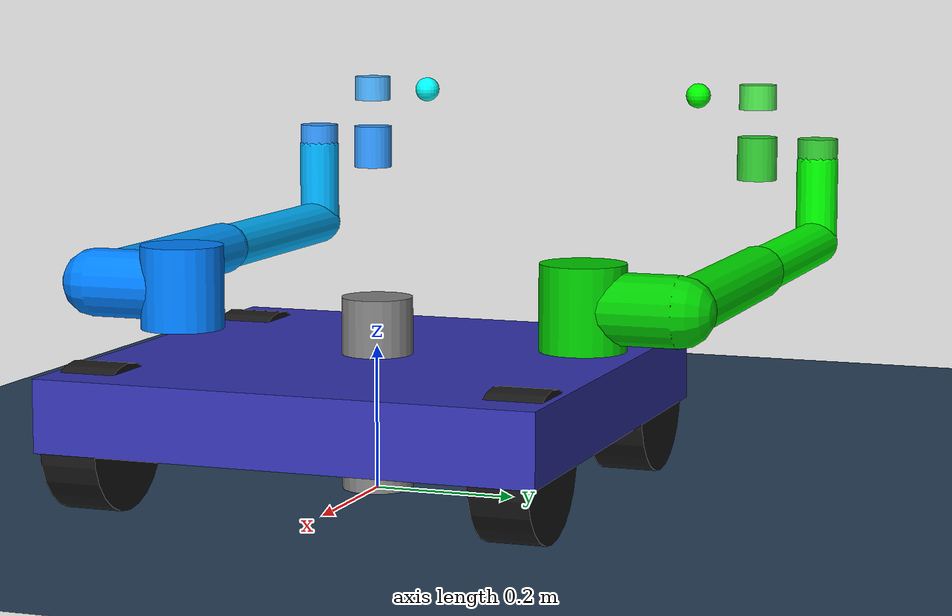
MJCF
<mujoco model="wheeled_dual_ur5e">
  <compiler angle="radian"/>

  <option integrator="implicitfast"/>

  <visual>
    <global azimuth="120" elevation="-20"/>
    <headlight ambient="0.3 0.3 0.3" diffuse="0.6 0.6 0.6" specular="0 0 0"/>
    <map force="0.1" zfar="30"/>
    <rgba haze="0.15 0.25 0.35 1"/>
  </visual>

  <default>
    <joint limited="true"/>
    <geom solref="0.008"/>
    <general ctrllimited="true" biastype="affine" gainprm="400" biasprm="0 -400 -40"/>
  </default>

  <asset>
    <texture type="skybox" colorspace="auto" builtin="gradient" rgb1="0.3 0.5 0.7" rgb2="0 0 0" width="512" height="3072"/>
    <texture type="2d" colorspace="auto" name="groundplane" builtin="checker" mark="edge" rgb1="0.2 0.3 0.4" rgb2="0.1 0.2 0.3" markrgb="0.8 0.8 0.8" width="300" height="300"/>
    <material name="groundplane" texture="groundplane" texuniform="true" texrepeat="5 5" reflectance="0.2"/>
  </asset>

  <worldbody>
    <geom name="floor" size="0 0 0.05" type="plane" material="groundplane"/>
    <light pos="0 0 3.5" dir="0 0 -1" type="directional" diffuse="0.4 0.4 0.4" specular="0.1 0.1 0.1"/>
    <light pos="1.5 1.5 2.5" dir="-0.485071 -0.485071 -0.727607" diffuse="0.5 0.5 0.5"/>
    <body name="base_x_body">
      <inertial pos="0 0 0" mass="2" diaginertia="0.1 0.1 0.1"/>
      <joint name="base_x" pos="0 0 0" axis="1 0 0" type="slide" range="-3 3" damping="10"/>
      <body name="base_y_body">
        <inertial pos="0 0 0" mass="2" diaginertia="0.1 0.1 0.1"/>
        <joint name="base_y" pos="0 0 0" axis="0 1 0" type="slide" range="-3 3" damping="10"/>
        <body name="base_yaw_body">
          <inertial pos="0 0 0" mass="2" diaginertia="0.1 0.1 0.1"/>
          <joint name="base_yaw" pos="0 0 0" axis="0 0 1" range="-3.1416 3.1416" damping="5"/>
          <body name="chassis" pos="0 0 0.14">
            <geom size="0.35 0.35 0.05" type="box" mass="30" rgba="0.2 0.2 0.7 1"/>
            <geom size="0.1 0.04" pos="0.25 0.3 -0.04" quat="0.707105 0.707108 0 0" type="cylinder" mass="1" rgba="0.1 0.1 0.1 1"/>
            <geom size="0.1 0.04" pos="0.25 -0.3 -0.04" quat="0.707105 0.707108 0 0" type="cylinder" mass="1" rgba="0.1 0.1 0.1 1"/>
            <geom size="0.1 0.04" pos="-0.25 0.3 -0.04" quat="0.707105 0.707108 0 0" type="cylinder" mass="1" rgba="0.1 0.1 0.1 1"/>
            <geom size="0.1 0.04" pos="-0.25 -0.3 -0.04" quat="0.707105 0.707108 0 0" type="cylinder" mass="1" rgba="0.1 0.1 0.1 1"/>
          </body>
          <body name="base_z_body">
            <inertial pos="0 0 0.1" mass="3" diaginertia="0.1 0.1 0.1"/>
            <joint name="base_z" pos="0 0 0" axis="0 0 1" type="slide" range="0 0.5" damping="10"/>
            <geom size="0.05 0.135" pos="0 0 0.135" type="cylinder" mass="0"/>
            <body name="left_shoulder_link" pos="0 0.3 0.27">
              <inertial pos="0 0 0" mass="3.761" diaginertia="0.01 0.01 0.01"/>
              <joint name="left_shoulder_pan_joint" pos="0 0 0" axis="0 0 1" range="-6.2832 6.2832" armature="0.1" damping="1"/>
              <geom size="0.06 0.06" type="cylinder" rgba="0 0.8 0 1"/>
              <geom size="0.05 0.0679" pos="0 0.0679 0" quat="0.707107 0.707107 0 0" type="capsule" rgba="0 0.8 0 1"/>
              <body name="left_upper_arm_link" pos="0 0.1358 0">
                <inertial pos="-0.2125 0 0" mass="8.058" diaginertia="0.2 0.2 0.01"/>
                <joint name="left_shoulder_lift_joint" pos="0 0 0" axis="0 1 0" range="-6.2832 6.2832" armature="0.1" damping="1"/>
                <geom size="0.04 0.2125" pos="-0.2125 0 0" quat="0.707107 0 0.707107 0" type="capsule" rgba="0 0.9 0 1"/>
                <body name="left_forearm_link" pos="-0.425 0 0">
                  <inertial pos="-0.1961 0 0.067" mass="2.846" diaginertia="0.05 0.05 0.01"/>
                  <joint name="left_elbow_joint" pos="0 0 0" axis="0 1 0" range="-3.1416 3.1416" armature="0.1" damping="0.5"/>
                  <geom size="0.035 0.1961" pos="-0.1961 0 0" quat="0.707107 0 0.707107 0" type="capsule" rgba="0 1 0 1"/>
                  <geom size="0.033 0.06665" pos="-0.3922 0 0.06665" quat="0 1 0 0" type="capsule" rgba="0 1 0 1"/>
                  <body name="left_wrist_1_link" pos="-0.3922 0 0.1333">
                    <inertial pos="0 -0.05 0" mass="1.37" diaginertia="0.005 0.005 0.005"/>
                    <joint name="left_wrist_1_joint" pos="0 0 0" axis="0 1 0" range="-6.2832 6.2832" armature="0.01" damping="0.1"/>
                    <geom size="0.032 0.035" type="cylinder" rgba="0.2 0.8 0.2 1"/>
                    <body name="left_wrist_2_link" pos="0 -0.0997 0">
                      <inertial pos="0 0 0.05" mass="1.37" diaginertia="0.005 0.005 0.005"/>
                      <joint name="left_wrist_2_joint" pos="0 0 0" axis="0 0 1" range="-6.2832 6.2832" armature="0.01" damping="0.1"/>
                      <geom size="0.032 0.035" type="cylinder" rgba="0.2 0.8 0.2 1"/>
                      <body name="left_wrist_3_link" pos="0 0 0.0996">
                        <inertial pos="0 -0.05 0" mass="0.195" diaginertia="0.001 0.001 0.001"/>
                        <joint name="left_wrist_3_joint" pos="0 0 0" axis="0 1 0" range="-6.2832 6.2832" armature="0.01" damping="0.1"/>
                        <geom size="0.03 0.02" type="cylinder" rgba="0.3 0.9 0.3 1"/>
                        <site name="left_ee_site" pos="0 -0.0996 0" size="0.02" rgba="0 1 0 1"/>
                      </body>
                    </body>
                  </body>
                </body>
              </body>
            </body>
            <body name="right_shoulder_link" pos="0 -0.3 0.27">
              <inertial pos="0 0 0" mass="3.761" diaginertia="0.01 0.01 0.01"/>
              <joint name="right_shoulder_pan_joint" pos="0 0 0" axis="0 0 1" range="-6.2832 6.2832" armature="0.1" damping="1"/>
              <geom size="0.06 0.06" type="cylinder" rgba="0 0.5 1 1"/>
              <geom size="0.05 0.0679" pos="0 -0.0679 0" quat="0.707107 -0.707107 0 0" type="capsule" rgba="0 0.5 1 1"/>
              <body name="right_upper_arm_link" pos="0 -0.1358 0">
                <inertial pos="-0.2125 0 0" mass="8.058" diaginertia="0.2 0.2 0.01"/>
                <joint name="right_shoulder_lift_joint" pos="0 0 0" axis="0 1 0" range="-6.2832 6.2832" armature="0.1" damping="1"/>
                <geom size="0.04 0.2125" pos="-0.2125 0 0" quat="0.707107 0 0.707107 0" type="capsule" rgba="0 0.6 1 1"/>
                <body name="right_forearm_link" pos="-0.425 0 0">
                  <inertial pos="-0.1961 0 0.067" mass="2.846" diaginertia="0.05 0.05 0.01"/>
                  <joint name="right_elbow_joint" pos="0 0 0" axis="0 1 0" range="-3.1416 3.1416" armature="0.1" damping="0.5"/>
                  <geom size="0.035 0.1961" pos="-0.1961 0 0" quat="0.707107 0 0.707107 0" type="capsule" rgba="0 0.7 1 1"/>
                  <geom size="0.033 0.06665" pos="-0.3922 0 0.06665" quat="0 1 0 0" type="capsule" rgba="0 0.7 1 1"/>
                  <body name="right_wrist_1_link" pos="-0.3922 0 0.1333">
                    <inertial pos="0 0.05 0" mass="1.37" diaginertia="0.005 0.005 0.005"/>
                    <joint name="right_wrist_1_joint" pos="0 0 0" axis="0 1 0" range="-6.2832 6.2832" armature="0.01" damping="0.1"/>
                    <geom size="0.032 0.035" type="cylinder" rgba="0.2 0.6 1 1"/>
                    <body name="right_wrist_2_link" pos="0 0.0997 0">
                      <inertial pos="0 0 0.05" mass="1.37" diaginertia="0.005 0.005 0.005"/>
                      <joint name="right_wrist_2_joint" pos="0 0 0" axis="0 0 1" range="-6.2832 6.2832" armature="0.01" damping="0.1"/>
                      <geom size="0.032 0.035" type="cylinder" rgba="0.2 0.6 1 1"/>
                      <body name="right_wrist_3_link" pos="0 0 0.0996">
                        <inertial pos="0 0.05 0" mass="0.195" diaginertia="0.001 0.001 0.001"/>
                        <joint name="right_wrist_3_joint" pos="0 0 0" axis="0 1 0" range="-6.2832 6.2832" armature="0.01" damping="0.1"/>
                        <geom size="0.03 0.02" type="cylinder" rgba="0.3 0.7 1 1"/>
                        <site name="right_ee_site" pos="0 0.0996 0" size="0.02" rgba="0 1 1 1"/>
                      </body>
                    </body>
                  </body>
                </body>
              </body>
            </body>
          </body>
        </body>
      </body>
    </body>
  </worldbody>

  <actuator>
    <general name="act_base_x" joint="base_x" ctrlrange="-3 3" gainprm="2000" biasprm="0 -2000 -200"/>
    <general name="act_base_y" joint="base_y" ctrlrange="-3 3" gainprm="2000" biasprm="0 -2000 -200"/>
    <general name="act_base_z" joint="base_z" ctrlrange="0 0.5" gainprm="35000" biasprm="0 -35000 -800"/>
    <general name="act_base_yaw" joint="base_yaw" ctrlrange="-3.1416 3.1416" gainprm="2000" biasprm="0 -2000 -200"/>
    <general name="act_left_shoulder_pan" joint="left_shoulder_pan_joint" ctrlrange="-6.28 6.28" gainprm="2000" biasprm="0 -2000 -200"/>
    <general name="act_left_shoulder_lift" joint="left_shoulder_lift_joint" ctrlrange="-6.28 6.28" gainprm="2000" biasprm="0 -2000 -200"/>
    <general name="act_left_elbow" joint="left_elbow_joint" ctrlrange="-3.14 3.14" gainprm="2000" biasprm="0 -2000 -200"/>
    <general name="act_left_wrist_1" joint="left_wrist_1_joint" ctrlrange="-6.28 6.28" gainprm="500" biasprm="0 -500 -50"/>
    <general name="act_left_wrist_2" joint="left_wrist_2_joint" ctrlrange="-6.28 6.28" gainprm="500" biasprm="0 -500 -50"/>
    <general name="act_left_wrist_3" joint="left_wrist_3_joint" ctrlrange="-6.28 6.28" gainprm="500" biasprm="0 -500 -50"/>
    <general name="act_right_shoulder_pan" joint="right_shoulder_pan_joint" ctrlrange="-6.28 6.28" gainprm="2000" biasprm="0 -2000 -200"/>
    <general name="act_right_shoulder_lift" joint="right_shoulder_lift_joint" ctrlrange="-6.28 6.28" gainprm="2000" biasprm="0 -2000 -200"/>
    <general name="act_right_elbow" joint="right_elbow_joint" ctrlrange="-3.14 3.14" gainprm="2000" biasprm="0 -2000 -200"/>
    <general name="act_right_wrist_1" joint="right_wrist_1_joint" ctrlrange="-6.28 6.28" gainprm="500" biasprm="0 -500 -50"/>
    <general name="act_right_wrist_2" joint="right_wrist_2_joint" ctrlrange="-6.28 6.28" gainprm="500" biasprm="0 -500 -50"/>
    <general name="act_right_wrist_3" joint="right_wrist_3_joint" ctrlrange="-6.28 6.28" gainprm="500" biasprm="0 -500 -50"/>
  </actuator>
</mujoco>
